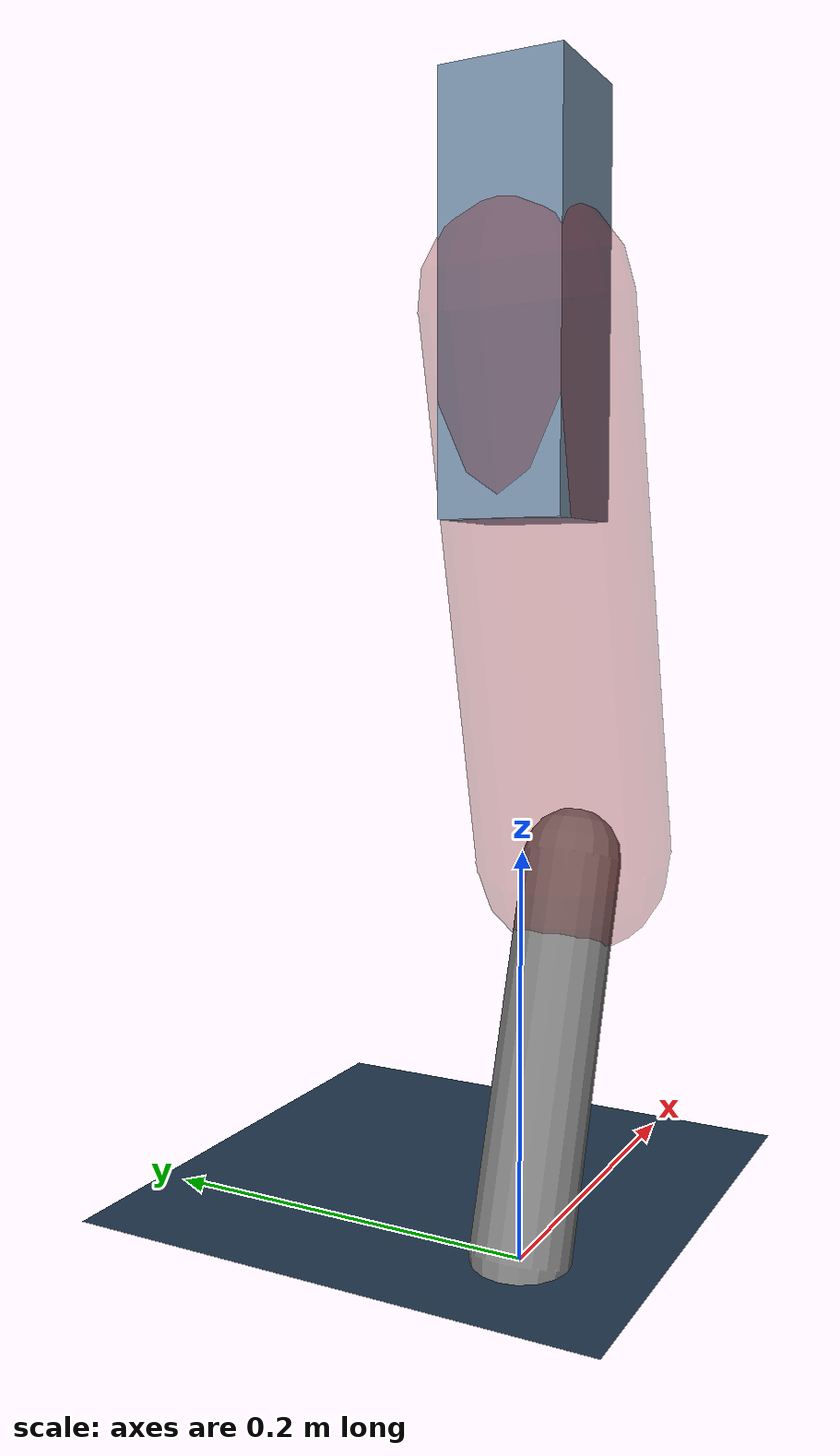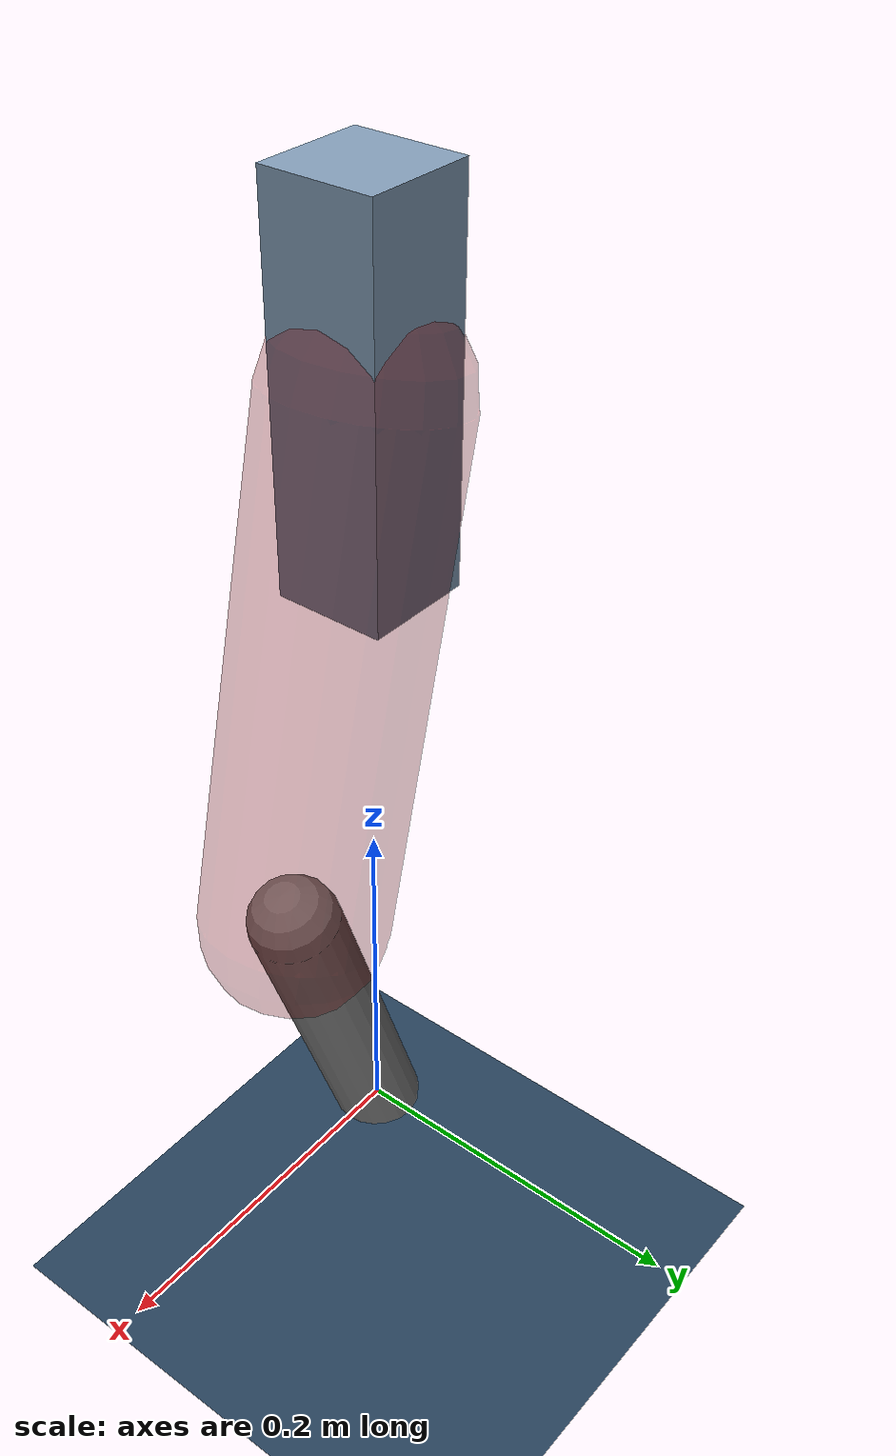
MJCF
<mujoco model="Hopper2D">
	<compiler inertiafromgeom="true" angle="radian" />
	<option timestep="0.001" integrator="implicit" cone="elliptic" solver="Newton" tolerance="1e-10" />

	<default>
		<geom contype="1" conaffinity="1" condim="3" friction="2 0.005 0.0001" solref="0.005 1" />
		<joint limited="true" damping="0.1" />
	</default>

	<asset>
		<texture name="skybox" type="skybox" builtin="gradient" rgb1=".4 .6 .8" rgb2="0 0 0" width="800" height="800" />
		<texture name="grid" type="2d" builtin="checker" rgb1=".1 .2 .3" rgb2=".2 .3 .4" width="300" height="300" mark="edge" markrgb=".2 .3 .4" />
		<material name="ground" texture="grid" texrepeat="1 1" texuniform="true" reflectance="0.1" />
		<material name="leg" rgba="0.5 0.6 0.7 1" />
	</asset>

	<worldbody>

		<geom name="floor" type="plane" size="5 5 0.25" material="ground" />

		<light directional="false" diffuse="0.8 0.8 0.8" specular="0.3 0.3 0.3" pos="0 0 2" dir="0 0 -1" />
		<light mode="targetbodycom" target="base" directional="false" diffuse="0.8 0.8 0.8" specular="0.3 0.3 0.3" pos="0 0 2" dir="0 0 -1" />

		<camera name="fixed" pos="0 -2 1" xyaxes="1 0 0 0 0 1" />
		<camera name="tracking" mode="trackcom" pos="0 -3 1" />

		<body name="root" pos="0 0 0.45505683231224314">
			<joint name="slide_x" type="slide" axis="1 0 0" range="-100 100" />
			<joint name="slide_z" type="slide" axis="0 0 1" range="0 10" />

			<body name="base" pos="0 0 0">
				<geom name="torso" type="box" size="0.03 0.03 0.1" mass="2.689" material="leg" />

				<body name="link1" pos="0 0 0" euler="0 1.3363626414173793 0">
					<joint type="hinge" axis="0 -1 0" pos="0 0 0" name="hinge1" limited="true" range="-3.14 3.14" stiffness="0" damping="0.1" />
					<geom name="thigh" type="capsule" fromto="0 0 0 0.27532699886305556 0 0" size="0.05" rgba="0.5 0 0 0.3" mass="0.9227501970439445" />

					<body name="link2" pos="0.27532699886305556 0 0" euler="0 0.5635479152983385 0">
						<joint type="hinge" axis="0 -1 0" pos="0 0 0" name="hinge2" limited="true" range="-3.14 3.14" stiffness="0" damping="0.1" />
						<geom name="shank" type="capsule" fromto="0 0 0 0.19788161942481777 0 0" size="0.025" mass="0.3991052955398542" />

					</body>
				</body>
			</body>
		</body>
	</worldbody>

	<actuator>
		<motor name="torque1" joint="hinge1" ctrlrange="-30.463638648114745 30.463638648114745" ctrllimited="true" gear="1" />
		<motor name="torque2" joint="hinge2" ctrlrange="-194.4638096609701 194.4638096609701" ctrllimited="true" gear="1" />
	</actuator>
</mujoco>
